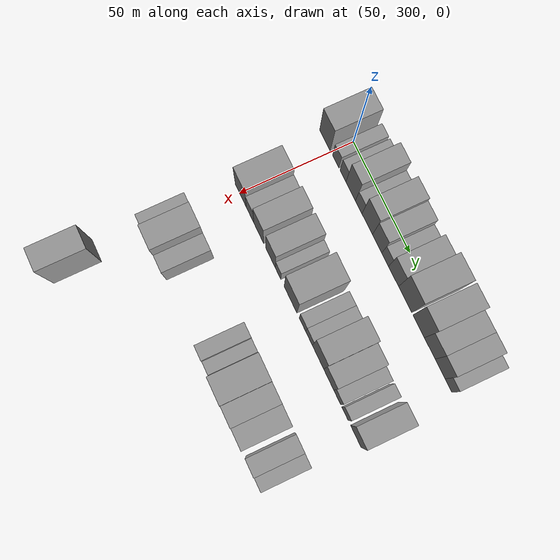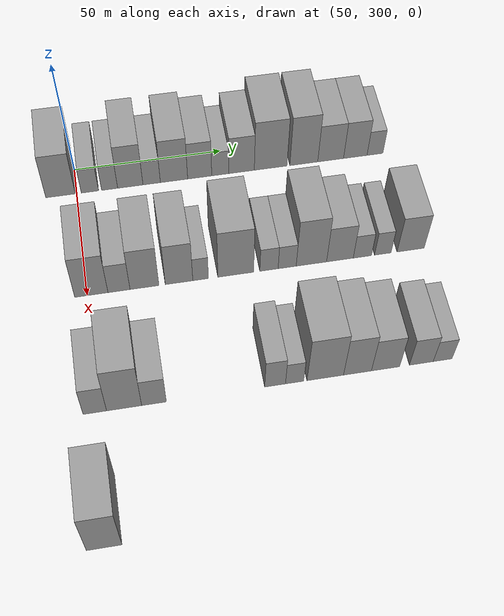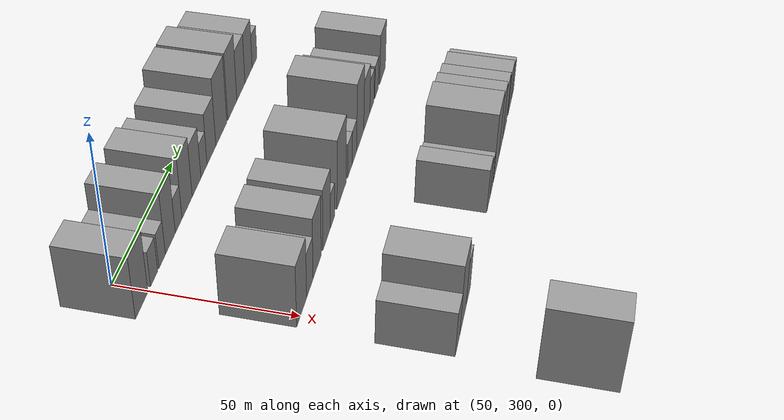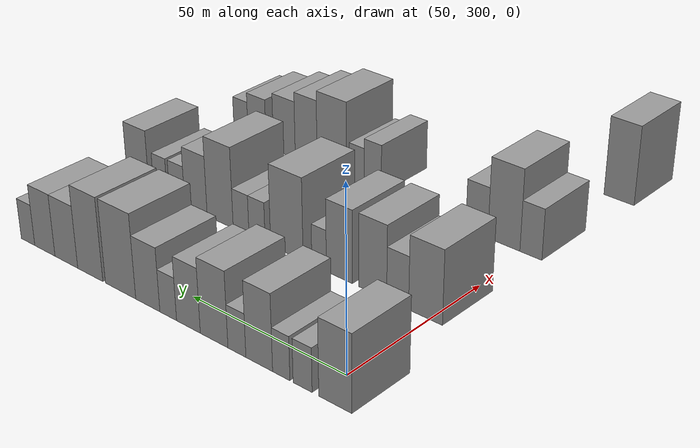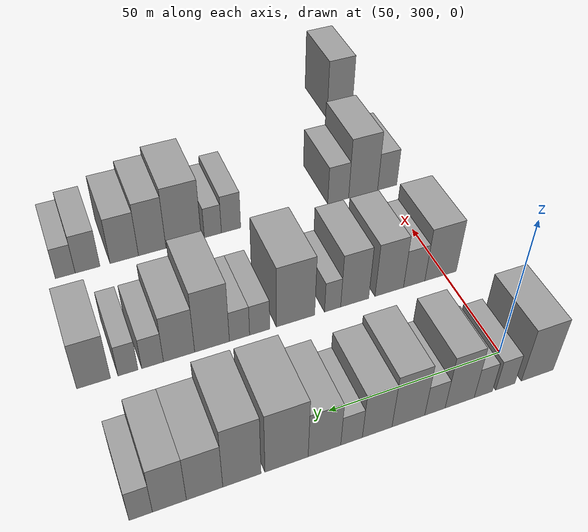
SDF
<sdf version="1.6">
 <world name="default">
  <model name="building_100">
   <static>1</static>
   <pose>50.0000 294.6523 0 0.000000 0.000000 0.000000</pose>
   <link name="link">
    <pose>0 0 10.50 0 0 0</pose>
    <collision name="collision"><geometry><box><size>20.0000 9.7616 21.0000</size></box></geometry></collision>
    <visual name="visual">
     <cast_shadows>0</cast_shadows>
     <geometry><box><size>20.0000 9.7616 21.0000</size></box></geometry>
     <material>
      <script>
       <uri>model://grey_wall/materials/scripts</uri>
       <uri>model://grey_wall/materials/textures</uri>
       <name>vrc/grey_wall</name>
      </script>
     </material>
    </visual>
   </link>
  </model>
  <model name="building_101">
   <static>1</static>
   <pose>50.0000 304.4187 0 0.000000 0.000000 0.000000</pose>
   <link name="link">
    <pose>0 0 6.00 0 0 0</pose>
    <collision name="collision"><geometry><box><size>20.0000 5.7712 12.0000</size></box></geometry></collision>
    <visual name="visual">
     <cast_shadows>0</cast_shadows>
     <geometry><box><size>20.0000 5.7712 12.0000</size></box></geometry>
     <material>
      <script>
       <uri>model://grey_wall/materials/scripts</uri>
       <uri>model://grey_wall/materials/textures</uri>
       <name>vrc/grey_wall</name>
      </script>
     </material>
    </visual>
   </link>
  </model>
  <model name="building_102">
   <static>1</static>
   <pose>50.0000 310.9854 0 0.000000 0.000000 0.000000</pose>
   <link name="link">
    <pose>0 0 6.00 0 0 0</pose>
    <collision name="collision"><geometry><box><size>20.0000 5.3621 12.0000</size></box></geometry></collision>
    <visual name="visual">
     <cast_shadows>0</cast_shadows>
     <geometry><box><size>20.0000 5.3621 12.0000</size></box></geometry>
     <material>
      <script>
       <uri>model://grey_wall/materials/scripts</uri>
       <uri>model://grey_wall/materials/textures</uri>
       <name>vrc/grey_wall</name>
      </script>
     </material>
    </visual>
   </link>
  </model>
  <model name="building_103">
   <static>1</static>
   <pose>50.0000 317.9177 0 0.000000 0.000000 0.000000</pose>
   <link name="link">
    <pose>0 0 10.50 0 0 0</pose>
    <collision name="collision"><geometry><box><size>20.0000 8.5025 21.0000</size></box></geometry></collision>
    <visual name="visual">
     <cast_shadows>0</cast_shadows>
     <geometry><box><size>20.0000 8.5025 21.0000</size></box></geometry>
     <material>
      <script>
       <uri>model://grey_wall/materials/scripts</uri>
       <uri>model://grey_wall/materials/textures</uri>
       <name>vrc/grey_wall</name>
      </script>
     </material>
    </visual>
   </link>
  </model>
  <model name="building_104">
   <static>1</static>
   <pose>50.0000 325.0932 0 0.000000 0.000000 0.000000</pose>
   <link name="link">
    <pose>0 0 6.00 0 0 0</pose>
    <collision name="collision"><geometry><box><size>20.0000 5.8486 12.0000</size></box></geometry></collision>
    <visual name="visual">
     <cast_shadows>0</cast_shadows>
     <geometry><box><size>20.0000 5.8486 12.0000</size></box></geometry>
     <material>
      <script>
       <uri>model://grey_wall/materials/scripts</uri>
       <uri>model://grey_wall/materials/textures</uri>
       <name>vrc/grey_wall</name>
      </script>
     </material>
    </visual>
   </link>
  </model>
  <model name="building_105">
   <static>1</static>
   <pose>50.0000 332.6283 0 0.000000 0.000000 0.000000</pose>
   <link name="link">
    <pose>0 0 10.50 0 0 0</pose>
    <collision name="collision"><geometry><box><size>20.0000 9.2216 21.0000</size></box></geometry></collision>
    <visual name="visual">
     <cast_shadows>0</cast_shadows>
     <geometry><box><size>20.0000 9.2216 21.0000</size></box></geometry>
     <material>
      <script>
       <uri>model://grey_wall/materials/scripts</uri>
       <uri>model://grey_wall/materials/textures</uri>
       <name>vrc/grey_wall</name>
      </script>
     </material>
    </visual>
   </link>
  </model>
  <model name="building_106">
   <static>1</static>
   <pose>50.0000 341.3157 0 0.000000 0.000000 0.000000</pose>
   <link name="link">
    <pose>0 0 9.00 0 0 0</pose>
    <collision name="collision"><geometry><box><size>20.0000 8.1533 18.0000</size></box></geometry></collision>
    <visual name="visual">
     <cast_shadows>0</cast_shadows>
     <geometry><box><size>20.0000 8.1533 18.0000</size></box></geometry>
     <material>
      <script>
       <uri>model://grey_wall/materials/scripts</uri>
       <uri>model://grey_wall/materials/textures</uri>
       <name>vrc/grey_wall</name>
      </script>
     </material>
    </visual>
   </link>
  </model>
  <model name="building_107">
   <static>1</static>
   <pose>50.0000 348.3226 0 0.000000 0.000000 0.000000</pose>
   <link name="link">
    <pose>0 0 6.00 0 0 0</pose>
    <collision name="collision"><geometry><box><size>20.0000 5.8605 12.0000</size></box></geometry></collision>
    <visual name="visual">
     <cast_shadows>0</cast_shadows>
     <geometry><box><size>20.0000 5.8605 12.0000</size></box></geometry>
     <material>
      <script>
       <uri>model://grey_wall/materials/scripts</uri>
       <uri>model://grey_wall/materials/textures</uri>
       <name>vrc/grey_wall</name>
      </script>
     </material>
    </visual>
   </link>
  </model>
  <model name="building_108">
   <static>1</static>
   <pose>50.0000 355.5914 0 0.000000 0.000000 0.000000</pose>
   <link name="link">
    <pose>0 0 9.00 0 0 0</pose>
    <collision name="collision"><geometry><box><size>20.0000 8.6771 18.0000</size></box></geometry></collision>
    <visual name="visual">
     <cast_shadows>0</cast_shadows>
     <geometry><box><size>20.0000 8.6771 18.0000</size></box></geometry>
     <material>
      <script>
       <uri>model://grey_wall/materials/scripts</uri>
       <uri>model://grey_wall/materials/textures</uri>
       <name>vrc/grey_wall</name>
      </script>
     </material>
    </visual>
   </link>
  </model>
  <model name="building_109">
   <static>1</static>
   <pose>50.0000 365.5402 0 0.000000 0.000000 0.000000</pose>
   <link name="link">
    <pose>0 0 12.00 0 0 0</pose>
    <collision name="collision"><geometry><box><size>20.0000 11.2205 24.0000</size></box></geometry></collision>
    <visual name="visual">
     <cast_shadows>0</cast_shadows>
     <geometry><box><size>20.0000 11.2205 24.0000</size></box></geometry>
     <material>
      <script>
       <uri>model://grey_wall/materials/scripts</uri>
       <uri>model://grey_wall/materials/textures</uri>
       <name>vrc/grey_wall</name>
      </script>
     </material>
    </visual>
   </link>
  </model>
  <model name="building_110">
   <static>1</static>
   <pose>50.0000 376.9643 0 0.000000 0.000000 0.000000</pose>
   <link name="link">
    <pose>0 0 12.00 0 0 0</pose>
    <collision name="collision"><geometry><box><size>20.0000 9.6275 24.0000</size></box></geometry></collision>
    <visual name="visual">
     <cast_shadows>0</cast_shadows>
     <geometry><box><size>20.0000 9.6275 24.0000</size></box></geometry>
     <material>
      <script>
       <uri>model://grey_wall/materials/scripts</uri>
       <uri>model://grey_wall/materials/textures</uri>
       <name>vrc/grey_wall</name>
      </script>
     </material>
    </visual>
   </link>
  </model>
  <model name="building_111">
   <static>1</static>
   <pose>50.0000 386.2666 0 0.000000 0.000000 0.000000</pose>
   <link name="link">
    <pose>0 0 9.00 0 0 0</pose>
    <collision name="collision"><geometry><box><size>20.0000 8.9772 18.0000</size></box></geometry></collision>
    <visual name="visual">
     <cast_shadows>0</cast_shadows>
     <geometry><box><size>20.0000 8.9772 18.0000</size></box></geometry>
     <material>
      <script>
       <uri>model://grey_wall/materials/scripts</uri>
       <uri>model://grey_wall/materials/textures</uri>
       <name>vrc/grey_wall</name>
      </script>
     </material>
    </visual>
   </link>
  </model>
  <model name="building_112">
   <static>1</static>
   <pose>50.0000 394.8444 0 0.000000 0.000000 0.000000</pose>
   <link name="link">
    <pose>0 0 9.00 0 0 0</pose>
    <collision name="collision"><geometry><box><size>20.0000 8.1784 18.0000</size></box></geometry></collision>
    <visual name="visual">
     <cast_shadows>0</cast_shadows>
     <geometry><box><size>20.0000 8.1784 18.0000</size></box></geometry>
     <material>
      <script>
       <uri>model://grey_wall/materials/scripts</uri>
       <uri>model://grey_wall/materials/textures</uri>
       <name>vrc/grey_wall</name>
      </script>
     </material>
    </visual>
   </link>
  </model>
  <model name="building_113">
   <static>1</static>
   <pose>50.0000 401.7102 0 0.000000 0.000000 0.000000</pose>
   <link name="link">
    <pose>0 0 6.00 0 0 0</pose>
    <collision name="collision"><geometry><box><size>20.0000 5.5532 12.0000</size></box></geometry></collision>
    <visual name="visual">
     <cast_shadows>0</cast_shadows>
     <geometry><box><size>20.0000 5.5532 12.0000</size></box></geometry>
     <material>
      <script>
       <uri>model://grey_wall/materials/scripts</uri>
       <uri>model://grey_wall/materials/textures</uri>
       <name>vrc/grey_wall</name>
      </script>
     </material>
    </visual>
   </link>
  </model>
  <model name="building_234">
   <static>1</static>
   <pose>90.0000 301.2820 0 0.000000 0.000000 0.000000</pose>
   <link name="link">
    <pose>0 0 10.50 0 0 0</pose>
    <collision name="collision"><geometry><box><size>20.0000 10.3833 21.0000</size></box></geometry></collision>
    <visual name="visual">
     <cast_shadows>0</cast_shadows>
     <geometry><box><size>20.0000 10.3833 21.0000</size></box></geometry>
     <material>
      <script>
       <uri>model://grey_wall/materials/scripts</uri>
       <uri>model://grey_wall/materials/textures</uri>
       <name>vrc/grey_wall</name>
      </script>
     </material>
    </visual>
   </link>
  </model>
  <model name="building_235">
   <static>1</static>
   <pose>90.0000 309.9303 0 0.000000 0.000000 0.000000</pose>
   <link name="link">
    <pose>0 0 7.50 0 0 0</pose>
    <collision name="collision"><geometry><box><size>20.0000 6.9132 15.0000</size></box></geometry></collision>
    <visual name="visual">
     <cast_shadows>0</cast_shadows>
     <geometry><box><size>20.0000 6.9132 15.0000</size></box></geometry>
     <material>
      <script>
       <uri>model://grey_wall/materials/scripts</uri>
       <uri>model://grey_wall/materials/textures</uri>
       <name>vrc/grey_wall</name>
      </script>
     </material>
    </visual>
   </link>
  </model>
  <model name="building_236">
   <static>1</static>
   <pose>90.0000 317.9336 0 0.000000 0.000000 0.000000</pose>
   <link name="link">
    <pose>0 0 10.50 0 0 0</pose>
    <collision name="collision"><geometry><box><size>20.0000 9.0932 21.0000</size></box></geometry></collision>
    <visual name="visual">
     <cast_shadows>0</cast_shadows>
     <geometry><box><size>20.0000 9.0932 21.0000</size></box></geometry>
     <material>
      <script>
       <uri>model://grey_wall/materials/scripts</uri>
       <uri>model://grey_wall/materials/textures</uri>
       <name>vrc/grey_wall</name>
      </script>
     </material>
    </visual>
   </link>
  </model>
  <model name="building_237">
   <static>1</static>
   <pose>90.0000 328.8429 0 0.000000 0.000000 0.000000</pose>
   <link name="link">
    <pose>0 0 10.50 0 0 0</pose>
    <collision name="collision"><geometry><box><size>20.0000 8.7253 21.0000</size></box></geometry></collision>
    <visual name="visual">
     <cast_shadows>0</cast_shadows>
     <geometry><box><size>20.0000 8.7253 21.0000</size></box></geometry>
     <material>
      <script>
       <uri>model://grey_wall/materials/scripts</uri>
       <uri>model://grey_wall/materials/textures</uri>
       <name>vrc/grey_wall</name>
      </script>
     </material>
    </visual>
   </link>
  </model>
  <model name="building_238">
   <static>1</static>
   <pose>90.0000 335.6854 0 0.000000 0.000000 0.000000</pose>
   <link name="link">
    <pose>0 0 6.00 0 0 0</pose>
    <collision name="collision"><geometry><box><size>20.0000 4.9598 12.0000</size></box></geometry></collision>
    <visual name="visual">
     <cast_shadows>0</cast_shadows>
     <geometry><box><size>20.0000 4.9598 12.0000</size></box></geometry>
     <material>
      <script>
       <uri>model://grey_wall/materials/scripts</uri>
       <uri>model://grey_wall/materials/textures</uri>
       <name>vrc/grey_wall</name>
      </script>
     </material>
    </visual>
   </link>
  </model>
  <model name="building_239">
   <static>1</static>
   <pose>90.0000 346.8883 0 0.000000 0.000000 0.000000</pose>
   <link name="link">
    <pose>0 0 12.00 0 0 0</pose>
    <collision name="collision"><geometry><box><size>20.0000 11.4459 24.0000</size></box></geometry></collision>
    <visual name="visual">
     <cast_shadows>0</cast_shadows>
     <geometry><box><size>20.0000 11.4459 24.0000</size></box></geometry>
     <material>
      <script>
       <uri>model://grey_wall/materials/scripts</uri>
       <uri>model://grey_wall/materials/textures</uri>
       <name>vrc/grey_wall</name>
      </script>
     </material>
    </visual>
   </link>
  </model>
  <model name="building_240">
   <static>1</static>
   <pose>90.0000 357.5527 0 0.000000 0.000000 0.000000</pose>
   <link name="link">
    <pose>0 0 6.00 0 0 0</pose>
    <collision name="collision"><geometry><box><size>20.0000 5.8829 12.0000</size></box></geometry></collision>
    <visual name="visual">
     <cast_shadows>0</cast_shadows>
     <geometry><box><size>20.0000 5.8829 12.0000</size></box></geometry>
     <material>
      <script>
       <uri>model://grey_wall/materials/scripts</uri>
       <uri>model://grey_wall/materials/textures</uri>
       <name>vrc/grey_wall</name>
      </script>
     </material>
    </visual>
   </link>
  </model>
  <model name="building_241">
   <static>1</static>
   <pose>90.0000 363.4102 0 0.000000 0.000000 0.000000</pose>
   <link name="link">
    <pose>0 0 6.00 0 0 0</pose>
    <collision name="collision"><geometry><box><size>20.0000 5.8320 12.0000</size></box></geometry></collision>
    <visual name="visual">
     <cast_shadows>0</cast_shadows>
     <geometry><box><size>20.0000 5.8320 12.0000</size></box></geometry>
     <material>
      <script>
       <uri>model://grey_wall/materials/scripts</uri>
       <uri>model://grey_wall/materials/textures</uri>
       <name>vrc/grey_wall</name>
      </script>
     </material>
    </visual>
   </link>
  </model>
  <model name="building_242">
   <static>1</static>
   <pose>90.0000 371.2535 0 0.000000 0.000000 0.000000</pose>
   <link name="link">
    <pose>0 0 12.00 0 0 0</pose>
    <collision name="collision"><geometry><box><size>20.0000 9.8546 24.0000</size></box></geometry></collision>
    <visual name="visual">
     <cast_shadows>0</cast_shadows>
     <geometry><box><size>20.0000 9.8546 24.0000</size></box></geometry>
     <material>
      <script>
       <uri>model://grey_wall/materials/scripts</uri>
       <uri>model://grey_wall/materials/textures</uri>
       <name>vrc/grey_wall</name>
      </script>
     </material>
    </visual>
   </link>
  </model>
  <model name="building_243">
   <static>1</static>
   <pose>90.0000 380.5284 0 0.000000 0.000000 0.000000</pose>
   <link name="link">
    <pose>0 0 9.00 0 0 0</pose>
    <collision name="collision"><geometry><box><size>20.0000 8.6953 18.0000</size></box></geometry></collision>
    <visual name="visual">
     <cast_shadows>0</cast_shadows>
     <geometry><box><size>20.0000 8.6953 18.0000</size></box></geometry>
     <material>
      <script>
       <uri>model://grey_wall/materials/scripts</uri>
       <uri>model://grey_wall/materials/textures</uri>
       <name>vrc/grey_wall</name>
      </script>
     </material>
    </visual>
   </link>
  </model>
  <model name="building_244">
   <static>1</static>
   <pose>90.0000 387.8556 0 0.000000 0.000000 0.000000</pose>
   <link name="link">
    <pose>0 0 6.00 0 0 0</pose>
    <collision name="collision"><geometry><box><size>20.0000 5.9591 12.0000</size></box></geometry></collision>
    <visual name="visual">
     <cast_shadows>0</cast_shadows>
     <geometry><box><size>20.0000 5.9591 12.0000</size></box></geometry>
     <material>
      <script>
       <uri>model://grey_wall/materials/scripts</uri>
       <uri>model://grey_wall/materials/textures</uri>
       <name>vrc/grey_wall</name>
      </script>
     </material>
    </visual>
   </link>
  </model>
  <model name="building_245">
   <static>1</static>
   <pose>90.0000 394.5390 0 0.000000 0.000000 0.000000</pose>
   <link name="link">
    <pose>0 0 6.00 0 0 0</pose>
    <collision name="collision"><geometry><box><size>20.0000 5.4077 12.0000</size></box></geometry></collision>
    <visual name="visual">
     <cast_shadows>0</cast_shadows>
     <geometry><box><size>20.0000 5.4077 12.0000</size></box></geometry>
     <material>
      <script>
       <uri>model://grey_wall/materials/scripts</uri>
       <uri>model://grey_wall/materials/textures</uri>
       <name>vrc/grey_wall</name>
      </script>
     </material>
    </visual>
   </link>
  </model>
  <model name="building_246">
   <static>1</static>
   <pose>90.0000 403.7065 0 0.000000 0.000000 0.000000</pose>
   <link name="link">
    <pose>0 0 9.00 0 0 0</pose>
    <collision name="collision"><geometry><box><size>20.0000 8.9273 18.0000</size></box></geometry></collision>
    <visual name="visual">
     <cast_shadows>0</cast_shadows>
     <geometry><box><size>20.0000 8.9273 18.0000</size></box></geometry>
     <material>
      <script>
       <uri>model://grey_wall/materials/scripts</uri>
       <uri>model://grey_wall/materials/textures</uri>
       <name>vrc/grey_wall</name>
      </script>
     </material>
    </visual>
   </link>
  </model>
  <model name="building_377">
   <static>1</static>
   <pose>130.0000 298.6742 0 0.000000 0.000000 0.000000</pose>
   <link name="link">
    <pose>0 0 7.50 0 0 0</pose>
    <collision name="collision"><geometry><box><size>20.0000 6.8543 15.0000</size></box></geometry></collision>
    <visual name="visual">
     <cast_shadows>0</cast_shadows>
     <geometry><box><size>20.0000 6.8543 15.0000</size></box></geometry>
     <material>
      <script>
       <uri>model://grey_wall/materials/scripts</uri>
       <uri>model://grey_wall/materials/textures</uri>
       <name>vrc/grey_wall</name>
      </script>
     </material>
    </visual>
   </link>
  </model>
  <model name="building_378">
   <static>1</static>
   <pose>130.0000 307.2289 0 0.000000 0.000000 0.000000</pose>
   <link name="link">
    <pose>0 0 12.00 0 0 0</pose>
    <collision name="collision"><geometry><box><size>20.0000 10.2551 24.0000</size></box></geometry></collision>
    <visual name="visual">
     <cast_shadows>0</cast_shadows>
     <geometry><box><size>20.0000 10.2551 24.0000</size></box></geometry>
     <material>
      <script>
       <uri>model://grey_wall/materials/scripts</uri>
       <uri>model://grey_wall/materials/textures</uri>
       <name>vrc/grey_wall</name>
      </script>
     </material>
    </visual>
   </link>
  </model>
  <model name="building_379">
   <static>1</static>
   <pose>130.0000 315.9871 0 0.000000 0.000000 0.000000</pose>
   <link name="link">
    <pose>0 0 7.50 0 0 0</pose>
    <collision name="collision"><geometry><box><size>20.0000 7.2614 15.0000</size></box></geometry></collision>
    <visual name="visual">
     <cast_shadows>0</cast_shadows>
     <geometry><box><size>20.0000 7.2614 15.0000</size></box></geometry>
     <material>
      <script>
       <uri>model://grey_wall/materials/scripts</uri>
       <uri>model://grey_wall/materials/textures</uri>
       <name>vrc/grey_wall</name>
      </script>
     </material>
    </visual>
   </link>
  </model>
  <model name="building_380">
   <static>1</static>
   <pose>130.0000 351.9761 0 0.000000 0.000000 0.000000</pose>
   <link name="link">
    <pose>0 0 7.50 0 0 0</pose>
    <collision name="collision"><geometry><box><size>20.0000 6.2389 15.0000</size></box></geometry></collision>
    <visual name="visual">
     <cast_shadows>0</cast_shadows>
     <geometry><box><size>20.0000 6.2389 15.0000</size></box></geometry>
     <material>
      <script>
       <uri>model://grey_wall/materials/scripts</uri>
       <uri>model://grey_wall/materials/textures</uri>
       <name>vrc/grey_wall</name>
      </script>
     </material>
    </visual>
   </link>
  </model>
  <model name="building_381">
   <static>1</static>
   <pose>130.0000 357.8339 0 0.000000 0.000000 0.000000</pose>
   <link name="link">
    <pose>0 0 6.00 0 0 0</pose>
    <collision name="collision"><geometry><box><size>20.0000 5.4766 12.0000</size></box></geometry></collision>
    <visual name="visual">
     <cast_shadows>0</cast_shadows>
     <geometry><box><size>20.0000 5.4766 12.0000</size></box></geometry>
     <material>
      <script>
       <uri>model://grey_wall/materials/scripts</uri>
       <uri>model://grey_wall/materials/textures</uri>
       <name>vrc/grey_wall</name>
      </script>
     </material>
    </visual>
   </link>
  </model>
  <model name="building_382">
   <static>1</static>
   <pose>130.0000 367.1140 0 0.000000 0.000000 0.000000</pose>
   <link name="link">
    <pose>0 0 12.00 0 0 0</pose>
    <collision name="collision"><geometry><box><size>20.0000 11.0837 24.0000</size></box></geometry></collision>
    <visual name="visual">
     <cast_shadows>0</cast_shadows>
     <geometry><box><size>20.0000 11.0837 24.0000</size></box></geometry>
     <material>
      <script>
       <uri>model://grey_wall/materials/scripts</uri>
       <uri>model://grey_wall/materials/textures</uri>
       <name>vrc/grey_wall</name>
      </script>
     </material>
    </visual>
   </link>
  </model>
  <model name="building_383">
   <static>1</static>
   <pose>130.0000 376.9069 0 0.000000 0.000000 0.000000</pose>
   <link name="link">
    <pose>0 0 10.50 0 0 0</pose>
    <collision name="collision"><geometry><box><size>20.0000 8.5020 21.0000</size></box></geometry></collision>
    <visual name="visual">
     <cast_shadows>0</cast_shadows>
     <geometry><box><size>20.0000 8.5020 21.0000</size></box></geometry>
     <material>
      <script>
       <uri>model://grey_wall/materials/scripts</uri>
       <uri>model://grey_wall/materials/textures</uri>
       <name>vrc/grey_wall</name>
      </script>
     </material>
    </visual>
   </link>
  </model>
  <model name="building_384">
   <static>1</static>
   <pose>130.0000 385.4846 0 0.000000 0.000000 0.000000</pose>
   <link name="link">
    <pose>0 0 9.00 0 0 0</pose>
    <collision name="collision"><geometry><box><size>20.0000 8.6534 18.0000</size></box></geometry></collision>
    <visual name="visual">
     <cast_shadows>0</cast_shadows>
     <geometry><box><size>20.0000 8.6534 18.0000</size></box></geometry>
     <material>
      <script>
       <uri>model://grey_wall/materials/scripts</uri>
       <uri>model://grey_wall/materials/textures</uri>
       <name>vrc/grey_wall</name>
      </script>
     </material>
    </visual>
   </link>
  </model>
  <model name="building_385">
   <static>1</static>
   <pose>130.0000 396.4824 0 0.000000 0.000000 0.000000</pose>
   <link name="link">
    <pose>0 0 7.50 0 0 0</pose>
    <collision name="collision"><geometry><box><size>20.0000 7.3421 15.0000</size></box></geometry></collision>
    <visual name="visual">
     <cast_shadows>0</cast_shadows>
     <geometry><box><size>20.0000 7.3421 15.0000</size></box></geometry>
     <material>
      <script>
       <uri>model://grey_wall/materials/scripts</uri>
       <uri>model://grey_wall/materials/textures</uri>
       <name>vrc/grey_wall</name>
      </script>
     </material>
    </visual>
   </link>
  </model>
  <model name="building_386">
   <static>1</static>
   <pose>130.0000 403.0617 0 0.000000 0.000000 0.000000</pose>
   <link name="link">
    <pose>0 0 6.00 0 0 0</pose>
    <collision name="collision"><geometry><box><size>20.0000 5.8165 12.0000</size></box></geometry></collision>
    <visual name="visual">
     <cast_shadows>0</cast_shadows>
     <geometry><box><size>20.0000 5.8165 12.0000</size></box></geometry>
     <material>
      <script>
       <uri>model://grey_wall/materials/scripts</uri>
       <uri>model://grey_wall/materials/textures</uri>
       <name>vrc/grey_wall</name>
      </script>
     </material>
    </visual>
   </link>
  </model>
  <model name="building_506">
   <static>1</static>
   <pose>170.0000 297.5136 0 0.000000 0.000000 0.000000</pose>
   <link name="link">
    <pose>0 0 12.00 0 0 0</pose>
    <collision name="collision"><geometry><box><size>20.0000 9.6539 24.0000</size></box></geometry></collision>
    <visual name="visual">
     <cast_shadows>0</cast_shadows>
     <geometry><box><size>20.0000 9.6539 24.0000</size></box></geometry>
     <material>
      <script>
       <uri>model://grey_wall/materials/scripts</uri>
       <uri>model://grey_wall/materials/textures</uri>
       <name>vrc/grey_wall</name>
      </script>
     </material>
    </visual>
   </link>
  </model>
 </world>
</sdf>
